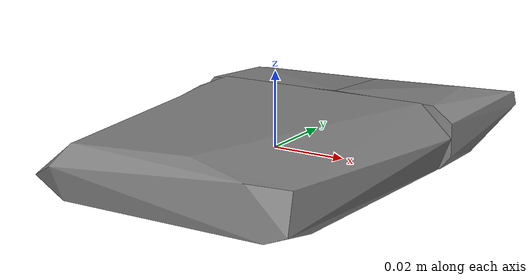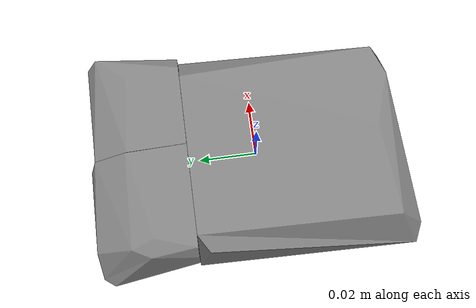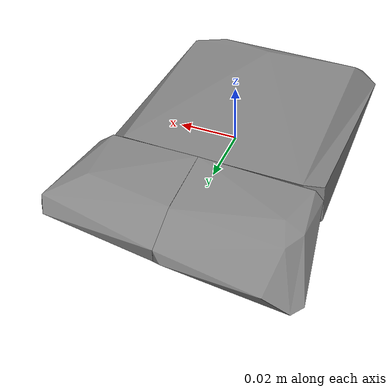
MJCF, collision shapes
<mujoco model="sponge">
  <compiler angle="radian" />

  <asset>
    <mesh name="sponge_visual_mesh" file="sponge/textured.obj" />
    <mesh name="sponge_collision_mesh_0" file="sponge/textured_coacd_0.stl" />
    <mesh name="sponge_collision_mesh_1" file="sponge/textured_coacd_1.stl" />
    <mesh name="sponge_collision_mesh_2" file="sponge/textured_coacd_2.stl" />
    <texture name="sponge_texture" type="2d" file="sponge/texture_map.png" />
    <material name="sponge_material" texture="sponge_texture" />
  </asset>

  <worldbody>
    <body name="sponge" pos="0 0 0" euler="0 0 0">
      <freejoint name="sponge_joint" />
      <geom name="sponge_visual_geom" type="mesh" mesh="sponge_visual_mesh" material="sponge_material" pos="0.015842356573766914 -0.011520562220217976 -0.00937252508059704" euler="0 0 0" contype="0" conaffinity="0" group="0" />
      <geom name="sponge_collision_geom_0" type="mesh" mesh="sponge_collision_mesh_0" pos="0.015842356573766914 -0.011520562220217976 -0.00937252508059704" euler="0 0 0" contype="1" conaffinity="1" group="3" />
      <geom name="sponge_collision_geom_1" type="mesh" mesh="sponge_collision_mesh_1" pos="0.015842356573766914 -0.011520562220217976 -0.00937252508059704" euler="0 0 0" contype="1" conaffinity="1" group="3" />
      <geom name="sponge_collision_geom_2" type="mesh" mesh="sponge_collision_mesh_2" pos="0.015842356573766914 -0.011520562220217976 -0.00937252508059704" euler="0 0 0" contype="1" conaffinity="1" group="3" />
      <inertial pos="0 0 0" euler="0 0 0" mass="0.0062" diaginertia="0.001 0.001 0.001" />
    </body>
  </worldbody>
</mujoco>
